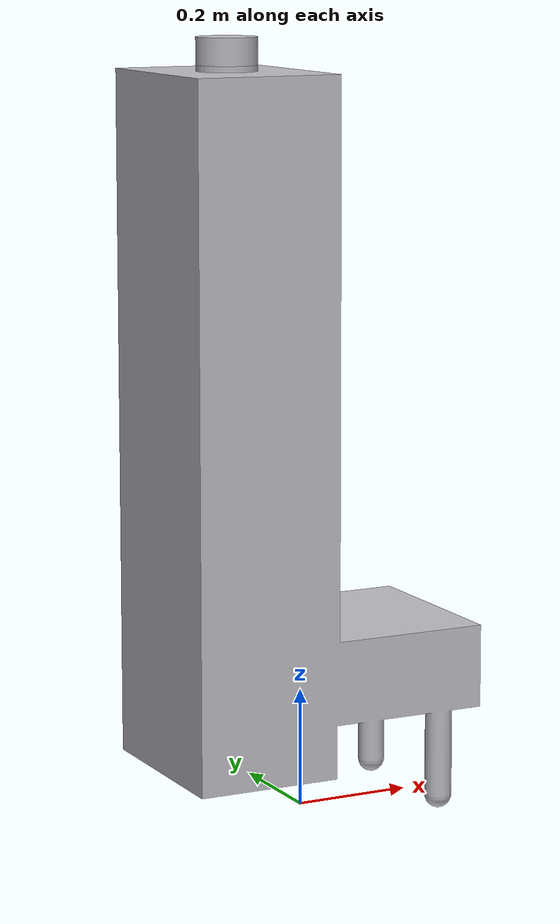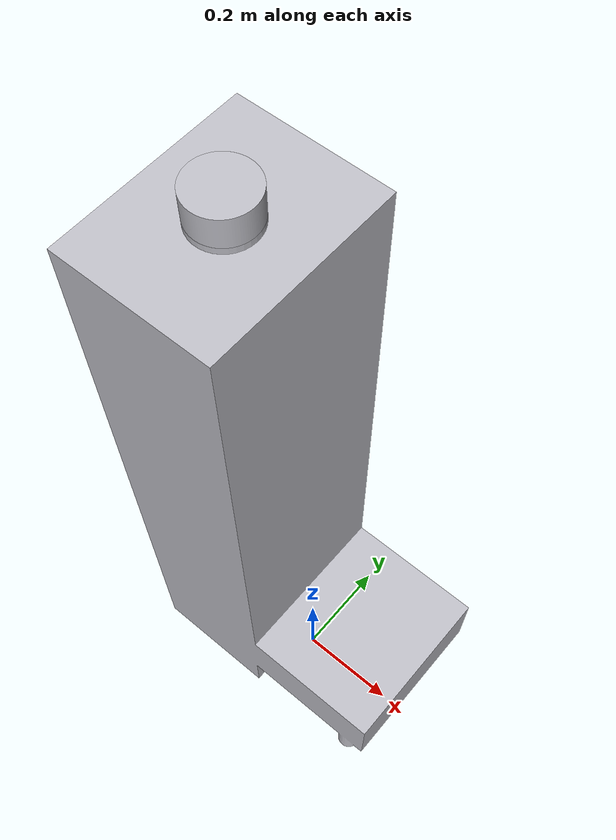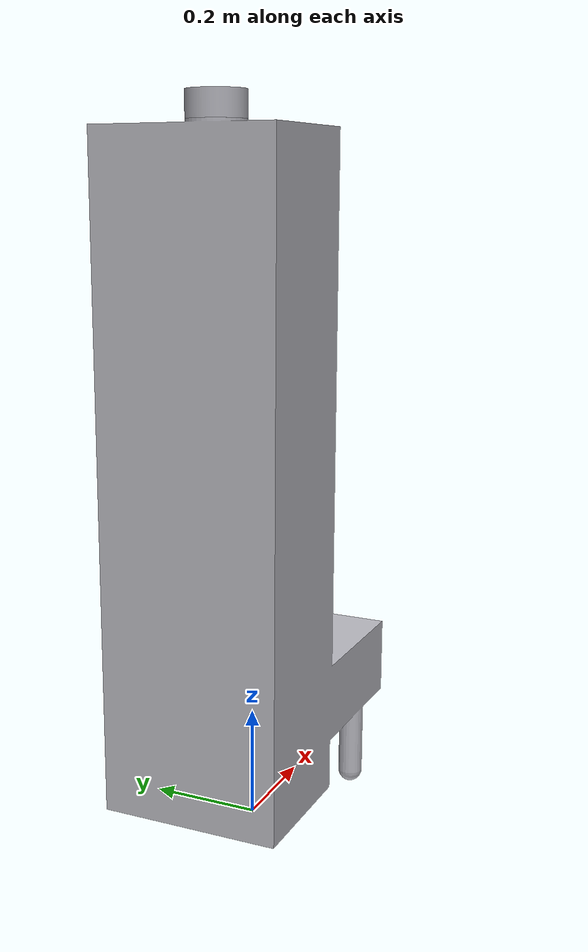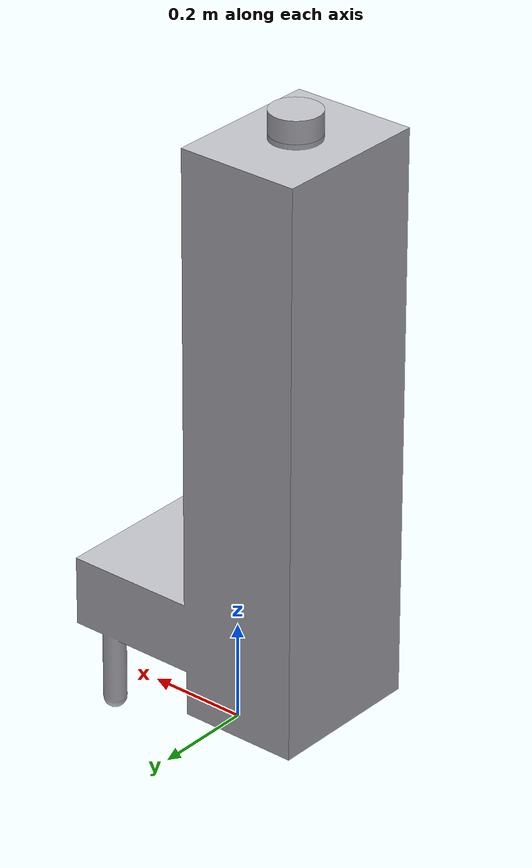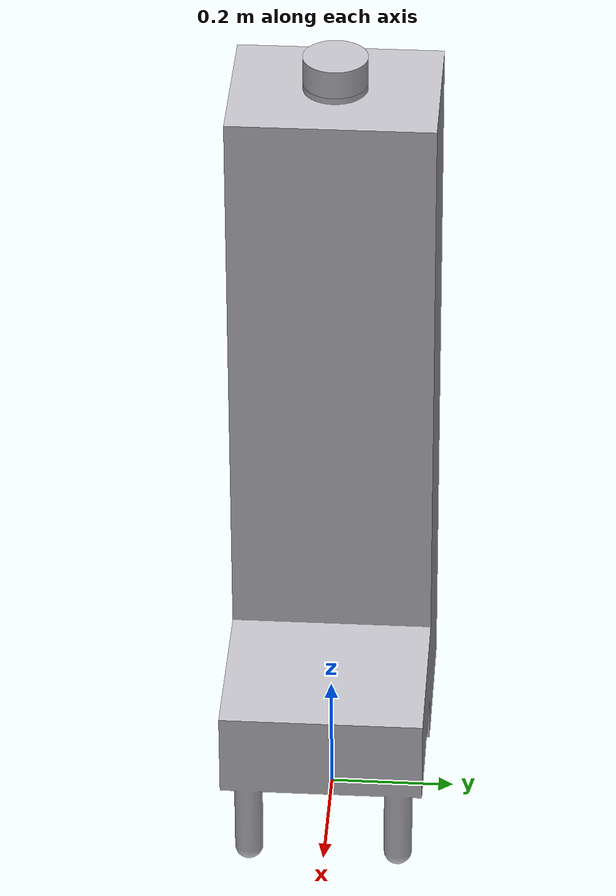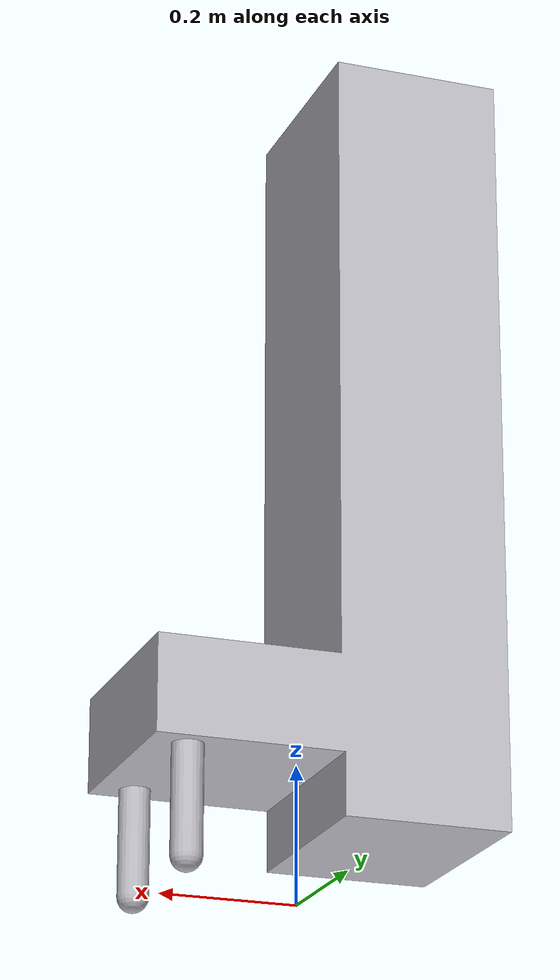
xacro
<?xml version="1.0" ?>
<robot name="simplify" xmlns:xacro="http://www.ros.org/wiki/xacro">

<xacro:include filename="$(find simplify_description)/urdf/materials.xacro" />
<xacro:include filename="$(find simplify_description)/urdf/simplify.trans" />
<xacro:include filename="$(find simplify_description)/urdf/simplify.gazebo" />
<link name="base_link">
  <inertial>
    <origin xyz="-0.10144261636054934 2.2323316203540828e-17 0.6142731365662268" rpy="0 0 0"/>
    <mass value="281.6081321133351"/>
    <inertia ixx="35.20815" iyy="36.281072" izz="5.893213" ixy="0.0" iyz="-0.0" ixz="3.251368"/>
  </inertial>
  <visual>
    <origin xyz="0 0 0" rpy="0 0 0"/>
    <geometry>
      <mesh filename="package://simplify_description/meshes/base_link.stl" scale="0.001 0.001 0.001"/>
    </geometry>
    <material name="aluminum_satin"/>
  </visual>
  <collision>
    <origin xyz="0 0 0" rpy="0 0 0"/>
    <geometry>
      <mesh filename="package://simplify_description/meshes/base_link.stl" scale="0.001 0.001 0.001"/>
    </geometry>
  </collision>
</link>

<link name="camera_1">
  <inertial>
    <origin xyz="0.0 3.860015400081353e-17 0.022499999999999964" rpy="0 0 0"/>
    <mass value="2.7320075113780233"/>
    <inertia ixx="0.002169" iyy="0.002169" izz="0.003415" ixy="0.0" iyz="-0.0" ixz="0.0"/>
  </inertial>
  <visual>
    <origin xyz="0.132 -0.0 -1.249369" rpy="0 0 0"/>
    <geometry>
      <mesh filename="package://simplify_description/meshes/camera_1.stl" scale="0.001 0.001 0.001"/>
    </geometry>
    <material name="steel_satin"/>
  </visual>
  <collision>
    <origin xyz="0.132 -0.0 -1.249369" rpy="0 0 0"/>
    <geometry>
      <mesh filename="package://simplify_description/meshes/camera_1.stl" scale="0.001 0.001 0.001"/>
    </geometry>
  </collision>
</link>

<joint name="Rigid1" type="fixed">
  <origin xyz="-0.132 0.0 1.249369" rpy="0 0 0"/>
  <parent link="base_link"/>
  <child link="camera_1"/>
</joint>

</robot>

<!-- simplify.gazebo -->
<robot name="simplify" xmlns:xacro="http://www.ros.org/wiki/xacro" >

<xacro:property name="body_color" value="Gazebo/Silver" />

<gazebo>
  <plugin name="control" filename="libgazebo_ros_control.so"/>
</gazebo>
<gazebo reference="base_link">
  <material>${body_color}</material>
  <mu1>0.2</mu1>
  <mu2>0.2</mu2>
  <selfCollide>true</selfCollide>
  <gravity>true</gravity>
</gazebo>

<gazebo reference="camera_1">
  <material>${body_color}</material>
  <mu1>0.2</mu1>
  <mu2>0.2</mu2>
  <selfCollide>true</selfCollide>
</gazebo>

</robot>
